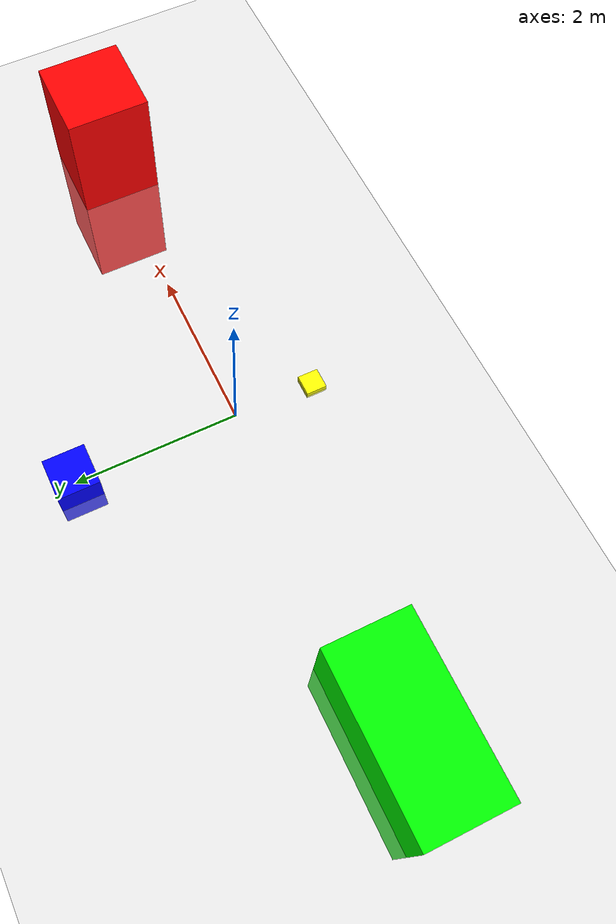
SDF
<?xml version="1.0" encoding="UTF-8"?>
<sdf version="1.9">
  <world name="default">
    <physics type="ode">
      <max_step_size>0.004</max_step_size>
      <real_time_factor>1.0</real_time_factor>
      <real_time_update_rate>250</real_time_update_rate>
    </physics>
    <gravity>0 0 -9.8</gravity>
    <magnetic_field>6e-06 2.3e-05 -4.2e-05</magnetic_field>
    <atmosphere type="adiabatic"/>
    <scene>
      <grid>false</grid>
      <ambient>0.4 0.4 0.4 1</ambient>
      <background>0.7 0.7 0.7 1</background>
      <shadows>true</shadows>
    </scene>
    <model name="ground_plane">
      <static>true</static>
      <link name="link">
        <collision name="collision">
          <geometry>
            <plane>
              <normal>0 0 1</normal>
              <size>1 1</size>
            </plane>
          </geometry>
          <surface>
            <friction>
              <ode/>
            </friction>
            <bounce/>
            <contact/>
          </surface>
        </collision>
        <visual name="visual">
          <geometry>
            <plane>
              <normal>0 0 1</normal>
              <size>500 500</size>
            </plane>
          </geometry>
          <material>
            <ambient>0.8 0.8 0.8 1</ambient>
            <diffuse>0.8 0.8 0.8 1</diffuse>
            <specular>0.8 0.8 0.8 1</specular>
          </material>
        </visual>
        <pose>0 0 0 0 -0 0</pose>
        <inertial>
          <pose>0 0 0 0 -0 0</pose>
          <mass>1</mass>
          <inertia>
            <ixx>1</ixx>
            <ixy>0</ixy>
            <ixz>0</ixz>
            <iyy>1</iyy>
            <iyz>0</iyz>
            <izz>1</izz>
          </inertia>
        </inertial>
        <enable_wind>false</enable_wind>
      </link>
      <pose>0 0 0 0 -0 0</pose>
      <self_collide>false</self_collide>
    </model>
    <light name="sunUTC" type="directional">
      <pose>0 0 500 0 -0 0</pose>
      <cast_shadows>true</cast_shadows>
      <intensity>1</intensity>
      <direction>0.001 0.625 -0.78</direction>
      <diffuse>0.904 0.904 0.904 1</diffuse>
      <specular>0.271 0.271 0.271 1</specular>
      <attenuation>
        <range>2000</range>
        <linear>0</linear>
        <constant>1</constant>
        <quadratic>0</quadratic>
      </attenuation>
      <spot>
        <inner_angle>0</inner_angle>
        <outer_angle>0</outer_angle>
        <falloff>0</falloff>
      </spot>
    </light>

     <!-- Landing box -->
    <!-- Blue box -->
    <model name="landing_box_1">
      <static>true</static>
      <pose>4 0 0 0 0 0</pose>
      <link name="link">
        <collision name="collision">
          <geometry>
            <box>
              <size>1 1 3.0</size>
            </box>
          </geometry>
          <surface>
            <friction>
              <ode>
                <mu>0.6</mu>
                <mu2>0.6</mu2>
              </ode>
            </friction>
            <bounce/>
            <contact/>
          </surface>
        </collision>
        <visual name="visual">
          <geometry>
            <box>
              <size>1 1 3.0</size>
            </box>
          </geometry>
          <material>
            <ambient>1 0 0 1</ambient>
            <diffuse>1 0 0 1</diffuse>
            <specular>0.2 0.2 0.2 1</specular>
          </material>
        </visual>
        <inertial>
          <mass>10</mass>
          <inertia>
            <ixx>0.833</ixx>
            <ixy>0</ixy>
            <ixz>0</ixz>
            <iyy>0.833</iyy>
            <iyz>0</iyz>
            <izz>0.833</izz>
          </inertia>
        </inertial>
      </link>
    </model>
    <!-- Yellow box -->
    <model name="landing_box_2">
      <static>true</static>
      <pose>-4 0 0 0 0 0</pose>
      <link name="link">
        <collision name="collision">
          <geometry>
            <box>
              <size>2.0 1.0 2.0</size>
            </box>
          </geometry>
          <surface>
            <friction>
              <ode>
                <mu>0.6</mu>
                <mu2>0.6</mu2>
              </ode>
            </friction>
            <bounce/>
            <contact/>
          </surface>
        </collision>
        <visual name="visual">
          <geometry>
            <box>
              <size>2.0 1.0 2.0</size>
            </box>
          </geometry>
          <material>
            <ambient>0 1 0 1</ambient>
            <diffuse>0 1 0 1</diffuse>
            <specular>0.2 0.2 0.2 1</specular>
          </material>
        </visual>
        <inertial>
          <mass>5</mass>
          <inertia>
            <ixx>0.260</ixx>
            <ixy>0</ixy>
            <ixz>0</ixz>
            <iyy>0.260</iyy>
            <iyz>0</iyz>
            <izz>0.260</izz>
          </inertia>
        </inertial>
      </link>
    </model>
    <model name="landing_box_3">
      <static>true</static>
      <pose>0 2 0 0 0 0</pose>
      <link name="link">
        <collision name="collision">
          <geometry>
            <box>
              <size>0.5 0.5 0.7</size>
            </box>
          </geometry>
          <surface>
            <friction>
              <ode>
                <mu>0.6</mu>
                <mu2>0.6</mu2>
              </ode>
            </friction>
            <bounce/>
            <contact/>
          </surface>
        </collision>
        <visual name="visual">
          <geometry>
            <box>
              <size>0.5 0.5 0.7</size>
            </box>
          </geometry>
          <material>
            <ambient>0 0 1 1</ambient>
            <diffuse>0 0 1 1</diffuse>
            <specular>0.2 0.2 0.2 1</specular>
          </material>
        </visual>
        <inertial>
          <mass>2</mass>
          <inertia>
            <ixx>0.0417</ixx>
            <ixy>0</ixy>
            <ixz>0</ixz>
            <iyy>0.0417</iyy>
            <iyz>0</iyz>
            <izz>0.0417</izz>
          </inertia>
        </inertial>
      </link>
    </model>
    <model name="landing_box_4">
      <static>true</static>
      <pose>0 -1 0 0 0 0</pose>
      <link name="link">
        <collision name="collision">
          <geometry>
            <box>
              <size>0.25 0.25 0.4</size>
            </box>
          </geometry>
          <surface>
            <friction>
              <ode>
                <mu>0.6</mu>
                <mu2>0.6</mu2>
              </ode>
            </friction>
            <bounce/>
            <contact/>
          </surface>
        </collision>
        <visual name="visual">
          <geometry>
            <box>
              <size>0.25 0.25 0.1</size>
            </box>
          </geometry>
          <material>
            <ambient>1 1 0 1</ambient>
            <diffuse>1 1 0 1</diffuse>
            <specular>0.2 0.2 0.2 1</specular>
          </material>
        </visual>
        <inertial>
          <mass>1</mass>
          <inertia>
            <ixx>0.0052</ixx>
            <ixy>0</ixy>
            <ixz>0</ixz>
            <iyy>0.0052</iyy>
            <iyz>0</iyz>
            <izz>0.0052</izz>
          </inertia>
        </inertial>
      </link>
    </model>

    <spherical_coordinates>
      <surface_model>EARTH_WGS84</surface_model>
      <world_frame_orientation>ENU</world_frame_orientation>
      <latitude_deg>47.397971057728974</latitude_deg>
      <longitude_deg> 8.546163739800146</longitude_deg>
      <elevation>0</elevation>
    </spherical_coordinates>
  </world>
</sdf>
